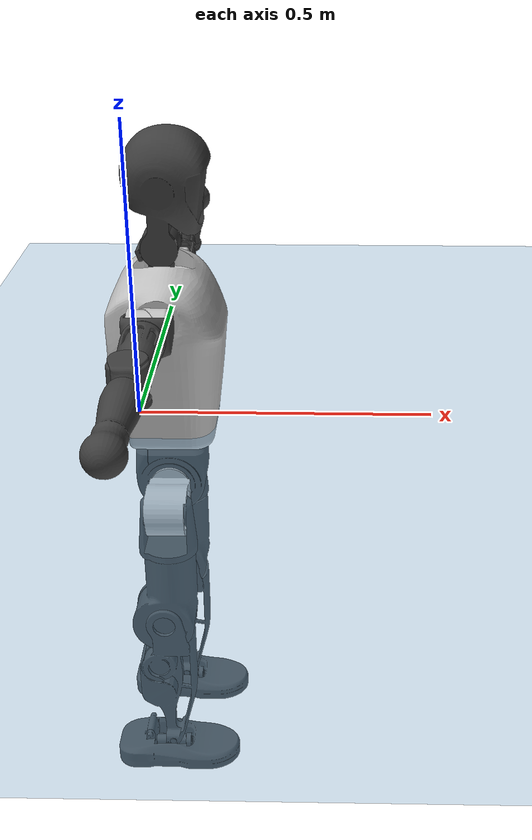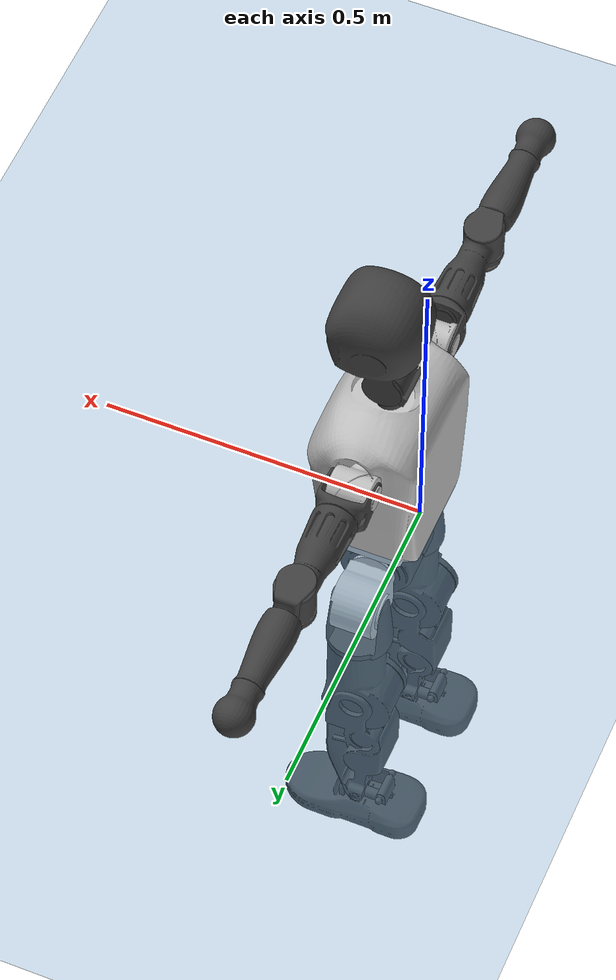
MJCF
<mujoco model="T1">
  <compiler angle="radian" assetdir="assets" balanceinertia="true" inertiafromgeom="false"/>

  <option timestep="0.005" density="1.2" viscosity="2e-05"/>

  <size nkey="1"/>

  <visual>
    <quality shadowsize="8192"/>
    <map shadowclip="0.5"/>
  </visual>

  <default>
    <default class="/">
      <joint armature="0.01" damping="0.01" frictionloss="0.1"/>
      <geom contype="0" conaffinity="0" group="1" solref="-1000 -80"/>
      <site size="0.01 0.005 0.005" group="5"/>
      <general forcelimited="true" biastype="affine" gainprm="25" biasprm="0 -25 -0.6"/>
      <default class="t1">
        <geom rgba="0.25 0.25 0.25 1"/>
        <default class="visual">
          <geom type="mesh" group="2"/>
        </default>
        <default class="collision">
          <geom group="3"/>
        </default>
        <default class="foot">
          <geom size="0.1115 0.05 0.015" type="box" condim="6" group="4" priority="1" solimp="0.015 1 0.015"/>
        </default>
        <default class="reward_collision_sphere">
          <geom group="5" rgba="1 0 0 1"/>
        </default>
      </default>
    </default>
  </default>

  <asset>
    <texture type="skybox" colorspace="auto" name="//unnamed_texture_0" builtin="gradient" rgb1="0.95 0.95 0.95" rgb2="0.95 0.95 0.95" width="100" height="600"/>
    <texture type="2d" colorspace="auto" name="texplane" builtin="checker" rgb1="0.345 0.575 0.748" rgb2="0.345 0.575 0.748" markrgb="1 1 1" width="512" height="512"/>
    <material name="MatPlane" class="/" texture="texplane" texuniform="true" texrepeat="2 2" specular="0.9"/>
    <mesh name="Trunk" class="/" file="Trunk.stl"/>
    <mesh name="H1" class="/" file="H1.stl"/>
    <mesh name="H2" class="/" file="H2.stl"/>
    <mesh name="AL1" class="/" file="AL1.stl"/>
    <mesh name="AL2" class="/" file="AL2.stl"/>
    <mesh name="AL3" class="/" file="AL3.stl"/>
    <mesh name="left_hand_link" class="/" file="left_hand_link.stl"/>
    <mesh name="AR1" class="/" file="AR1.stl"/>
    <mesh name="AR2" class="/" file="AR2.stl"/>
    <mesh name="AR3" class="/" file="AR3.stl"/>
    <mesh name="right_hand_link" class="/" file="right_hand_link.stl"/>
    <mesh name="Waist" class="/" file="Waist.stl"/>
    <mesh name="Hip_Pitch_Left" class="/" file="Hip_Pitch_Left.stl"/>
    <mesh name="Hip_Roll_Left" class="/" file="Hip_Roll_Left.stl"/>
    <mesh name="Hip_Yaw_Left" class="/" file="Hip_Yaw_Left.stl"/>
    <mesh name="Shank_Left" class="/" file="Shank_Left.stl"/>
    <mesh name="Ankle_Cross_Left" class="/" file="Ankle_Cross_Left.stl"/>
    <mesh name="left_foot_link" class="/" file="left_foot_link.stl"/>
    <mesh name="Hip_Pitch_Right" class="/" file="Hip_Pitch_Right.stl"/>
    <mesh name="Hip_Roll_Right" class="/" file="Hip_Roll_Right.stl"/>
    <mesh name="Hip_Yaw_Right" class="/" file="Hip_Yaw_Right.stl"/>
    <mesh name="Shank_Right" class="/" file="Shank_Right.stl"/>
    <mesh name="Ankle_Cross_Right" class="/" file="Ankle_Cross_Right.stl"/>
    <mesh name="right_foot_link" class="/" file="right_foot_link.stl"/>
  </asset>

  <worldbody>
    <geom name="floor" class="/" size="100 100 0.125" type="plane" group="0" material="MatPlane"/>
    <light name="toplight_shadow" class="/" pos="0 0 5" dir="0.0990148 0.0990148 -0.990148" type="directional" ambient="0.04 0.04 0.04" diffuse="0.55 0.55 0.55" specular="0.12 0.12 0.12"/>
    <light name="toplight_fill" class="/" pos="0 0 5" dir="0.0990148 0.0990148 -0.990148" type="directional" castshadow="false" ambient="0.04 0.04 0.04" diffuse="0.3 0.3 0.3" specular="0.08 0.08 0.08"/>
    <body name="trunk" childclass="t1" pos="0.000191413 -0.000432128 -3.56897e-05" quat="1 0.00012365 -0.000207048 -0.000436847">
      <inertial pos="0.0460399 -0.00142355 0.10258" quat="0.999965 0.000384923 -0.00831507 0.000740092" mass="9.35046" diaginertia="0.0376577 0.0593469 0.0513207"/>
      <joint name="//unnamed_joint_0" type="free" armature="0" damping="0" frictionloss="0"/>
      <geom name="//unnamed_geom_1" class="visual" rgba="0.76 0.76 0.76 1" mesh="Trunk"/>
      <geom name="//unnamed_geom_2" class="collision" size="0.069212 0.0922827 0.138424" pos="0.0501565 0 0.118134" type="box"/>
      <geom name="//unnamed_geom_3" class="reward_collision_sphere" size="0.106125" pos="0.0501565 0 0.0984448"/>
      <geom name="//unnamed_geom_4" class="reward_collision_sphere" size="0.0138424" pos="0.0501565 0.0805877 0"/>
      <geom name="//unnamed_geom_5" class="reward_collision_sphere" size="0.0138424" pos="0.0501565 -0.0805877 0"/>
      <geom name="//unnamed_geom_6" class="reward_collision_sphere" size="0.0138424" pos="0.0501565 0.101446 0.177201"/>
      <geom name="//unnamed_geom_7" class="reward_collision_sphere" size="0.0138424" pos="0.0501565 -0.101446 0.177201"/>
      <site name="imu" pos="-0.0090833 0.00971015 -0.00869255" size="0.00922827"/>
      <camera name="track" pos="0 -1.89618 0" quat="0.707107 0.707107 0 0" mode="trackcom"/>
      <camera name="ego_camera" pos="0.101985 0 0.413468" quat="-0.5 -0.5 0.5 0.5"/>
      <body name="H1" pos="0.0515181 3.22879e-05 0.239828" quat="1 0.000272988 0.000781086 -0.000300887">
        <inertial pos="-0.0012028 -0.00103331 0.0556043" quat="0.763659 -0.0119452 0.00078967 0.645509" mass="0.36358" diaginertia="9.93786e-05 0.000172094 0.000140391"/>
        <joint name="AAHead_yaw" pos="0 0 0" axis="0.000842646 -0.00222007 0.999997" stiffness="0.000970329" range="-1.56724 1.57641" armature="0.0101406" damping="0.00160845" frictionloss="0.0912375"/>
        <geom name="//unnamed_geom_8" class="visual" mesh="H1"/>
        <body name="H2" pos="0.00162551 9.47289e-05 0.0608368" quat="1 -0.000136122 0.000122301 0.000391053">
          <inertial pos="0.0061156 0.00141219 0.0968508" quat="0.98839 0.106828 -0.0746339 -0.0781183" mass="0.500054" diaginertia="0.000829977 0.00147571 0.00158402"/>
          <joint name="Head_pitch" pos="0 0 0" axis="-0.000934584 -0.999999 -0.00121358" range="-1.22353 0.358745" armature="0.00864532" damping="0.00724246" frictionloss="0.0899791"/>
          <geom name="//unnamed_geom_9" class="visual" mesh="H2"/>
          <geom name="//unnamed_geom_10" class="collision" size="0.0738261" pos="0.00835941 0 0.108289"/>
          <geom name="//unnamed_geom_11" class="reward_collision_sphere" size="0.0830544" pos="0.0167188 0 0.0984448"/>
        </body>
      </body>
      <body name="AL1" pos="0.0478872 0.100479 0.214725" quat="1 -0.000248685 0.000211073 -5.46979e-06">
        <inertial pos="-0.00101847 0.0432731 -7.82058e-05" quat="0.50363 0.496019 -0.505197 0.495073" mass="0.41815" diaginertia="0.000554984 0.00100233 0.000273868"/>
        <joint name="Left_Shoulder_Pitch" pos="0 0 0" axis="-0.000502283 0.999991 -0.00417498" range="-3.32894 1.20945" armature="0.00962289" damping="0.00898348" frictionloss="0.0934876"/>
        <geom name="//unnamed_geom_12" class="visual" rgba="0.76 0.76 0.76 1" mesh="AL1"/>
        <body name="AL2" pos="0.00140366 0.0441595 8.46738e-05" quat="1 1.29553e-05 -3.06171e-05 1.12663e-05">
          <inertial pos="0.00362879 0.0362941 0.00101541" quat="0.487641 0.512205 -0.487986 0.511588" mass="0.127773" diaginertia="0.000163394 0.000259657 0.000161758"/>
          <joint name="Left_Shoulder_Roll" pos="0 0 0" axis="-0.999996 -0.00207017 0.00170076" range="-1.53768 1.77503" armature="0.0084688" damping="0.00589207" frictionloss="0.0918472"/>
          <geom name="//unnamed_geom_13" class="visual" mesh="AL2"/>
          <body name="AL3" pos="0.00124891 0.0571605 -0.00068569" quat="1 6.74824e-05 -0.000151002 6.67644e-06">
            <inertial pos="-0.000344421 0.0808507 -0.000152671" quat="0.708492 0.705713 -0.00141809 0.00272579" mass="0.806539" diaginertia="0.00530009 0.00989458 0.000565834"/>
            <joint name="Left_Elbow_Pitch" pos="0 0 0" axis="-0.00908373 -0.999945 0.00517377" range="-2.23618 2.28371" armature="0.00820954" damping="0.00215762" frictionloss="0.0912425"/>
            <geom name="//unnamed_geom_14" class="visual" mesh="AL3"/>
            <geom name="//unnamed_geom_15" class="collision" size="0.0276848 0.069212" pos="0 0.0474045 0" quat="0.707105 0.707108 0 0" type="cylinder"/>
            <geom name="//unnamed_geom_16" class="reward_collision_sphere" size="0.0332218"/>
            <body name="left_hand_link" pos="0.000337799 0.140244 0.000904893" quat="1 0.000291725 0.000279804 -0.000299709">
              <inertial pos="-0.000389025 0.104141 -0.000346324" quat="0.707846 0.706366 -1.17459e-05 -0.000221715" mass="0.25466" diaginertia="0.00335366 0.00630434 0.000195643"/>
              <joint name="Left_Elbow_Yaw" pos="0 0 0" axis="-0.00506394 -0.00133313 0.999986" range="-2.42538 0.00665977" armature="0.0100968" damping="0.0149025" frictionloss="0.0946318"/>
              <geom name="//unnamed_geom_17" class="visual" mesh="left_hand_link"/>
              <geom name="//unnamed_geom_18" class="collision" size="0.0276848 0.0807473" pos="0 0.123252 0" quat="0.707105 0.707108 0 0" type="cylinder"/>
              <geom name="//unnamed_geom_19" class="reward_collision_sphere" size="0.0461413"/>
              <geom name="//unnamed_geom_20" class="reward_collision_sphere" size="0.0322989" pos="0 0.10429 0"/>
              <geom name="//unnamed_geom_21" class="reward_collision_sphere" size="0.0322989" pos="0 0.20384 0"/>
            </body>
          </body>
        </body>
      </body>
      <body name="AR1" pos="0.0465993 -0.100281 0.215277" quat="1 0.000350864 0.00027491 5.74284e-05">
        <inertial pos="-0.00271111 -0.0437663 0.000140126" quat="0.496605 0.497828 -0.502759 0.502777" mass="0.412267" diaginertia="0.000563594 0.00100022 0.000276732"/>
        <joint name="Right_Shoulder_Pitch" pos="0 0 0" axis="-0.0012423 -0.999994 0.00326856" stiffness="0.00324513" range="-1.22841 3.31189" armature="0.00913703" damping="0.00566503" frictionloss="0.0914248"/>
        <geom name="//unnamed_geom_22" class="visual" rgba="0.76 0.76 0.76 1" mesh="AR1"/>
        <body name="AR2" pos="-5.50951e-05 -0.0428202 -0.000121433" quat="1 0.000447039 0.000261597 0.000181563">
          <inertial pos="0.00208616 -0.0355199 -0.000206615" quat="0.511567 0.488056 -0.511844 0.487971" mass="0.124943" diaginertia="0.000164463 0.000268934 0.00016196"/>
          <joint name="Right_Shoulder_Roll" pos="0 0 0" axis="-0.999987 0.00352215 -0.00376698" stiffness="0.00135526" range="-1.75316 1.61074" armature="0.009017" damping="0.0070571" frictionloss="0.0936126"/>
          <geom name="//unnamed_geom_23" class="visual" mesh="AR2"/>
          <body name="AR3" pos="-0.000858916 -0.0575345 -0.000455597" quat="1 1.02563e-05 1.09663e-05 -2.7416e-05">
            <inertial pos="-0.000542168 -0.0827421 0.000998547" quat="0.708746 0.705463 0.000641015 -0.000770785" mass="0.798144" diaginertia="0.00520274 0.00977058 0.000579311"/>
            <joint name="Right_Elbow_Pitch" pos="0 0 0" axis="0.00406428 0.999992 0.000488096" range="-2.27897 2.26114" armature="0.00933343" damping="0.0120879" frictionloss="0.0927437"/>
            <geom name="//unnamed_geom_24" class="visual" mesh="AR3"/>
            <geom name="//unnamed_geom_25" class="collision" size="0.0276848 0.069212" pos="0 -0.0474045 0" quat="0.707105 0.707108 0 0" type="cylinder"/>
            <geom name="//unnamed_geom_26" class="reward_collision_sphere" size="0.0332218"/>
            <body name="right_hand_link" pos="-0.000655483 -0.139156 -0.000295227" quat="1 0.000127244 -0.000122787 0.000308054">
              <inertial pos="-0.000494725 -0.103807 0.00045983" quat="0.70765 0.706561 -0.000437965 0.00187477" mass="0.26133" diaginertia="0.00332491 0.00625103 0.000199117"/>
              <joint name="Right_Elbow_Yaw" pos="0 0 0" axis="-0.00317571 -0.000257772 0.999995" range="0.006678 2.43186" armature="0.00936456" damping="0.0110161" frictionloss="0.0922356"/>
              <geom name="//unnamed_geom_27" class="visual" mesh="right_hand_link"/>
              <geom name="//unnamed_geom_28" class="collision" size="0.0276848 0.0807473" pos="0 -0.123252 0" quat="0.707105 0.707108 0 0" type="cylinder"/>
              <geom name="//unnamed_geom_29" class="reward_collision_sphere" size="0.0461413"/>
              <geom name="//unnamed_geom_30" class="reward_collision_sphere" size="0.0322989" pos="0 -0.10429 0"/>
              <geom name="//unnamed_geom_31" class="reward_collision_sphere" size="0.0322989" pos="0 -0.20384 0"/>
            </body>
          </body>
        </body>
      </body>
      <body name="Waist" pos="0.0536144 -0.00206601 -0.113896" quat="1 0.000288845 0.000226426 0.000130754">
        <inertial pos="-0.000581813 -0.000605657 0.00716365" quat="0.983241 -0.000934845 -0.182273 0.00351806" mass="2.07229" diaginertia="0.00215976 0.00413546 0.00438998"/>
        <joint name="Waist" pos="0 0 0" axis="-0.00573178 -0.00702075 0.999959" range="-1.59018 1.58742" armature="0.00962568" damping="0.0226731" frictionloss="0.0936839"/>
        <geom name="//unnamed_geom_32" class="visual" mesh="Waist"/>
        <body name="Hip_Pitch_Left" pos="-0.00111532 0.100879 -4.44119e-05" quat="0.999999 0.000930027 -0.000674651 -0.000781573">
          <inertial pos="0.000425692 -0.00541077 -0.0181921" quat="0.975159 0.221012 0.0146811 0.00164695" mass="0.773897" diaginertia="0.000720146 0.0010973 0.00115671"/>
          <joint name="Left_Hip_Pitch" pos="0 0 0" axis="0.00570008 0.999976 0.00401469" range="-1.78476 1.56998" armature="0.00893153" damping="0.00747264" frictionloss="0.101453"/>
          <geom name="//unnamed_geom_33" class="visual" rgba="0.76 0.76 0.76 1" mesh="Hip_Pitch_Left"/>
          <body name="Hip_Roll_Left" pos="0.00243123 0.00103187 -0.0222348" quat="1 0.000555375 0.000568286 -0.000418207">
            <inertial pos="0.00111183 0.00102012 -0.0546246" quat="0.708225 -0.0080044 -0.00517357 0.705923" mass="0.300712" diaginertia="0.000704931 0.00115901 0.000473802"/>
            <joint name="Left_Hip_Roll" pos="0 0 0" axis="-0.999999 0.00160032 0.000119247" stiffness="0.000797377" range="-1.57092 0.19792" armature="0.00928764" damping="0.0146624" frictionloss="0.0928382"/>
            <geom name="//unnamed_geom_34" class="visual" mesh="Hip_Roll_Left"/>
            <geom name="//unnamed_geom_35" class="reward_collision_sphere" size="0.0507555"/>
            <body name="Hip_Yaw_Left" pos="0.00173958 -0.00119853 -0.0815431" quat="1 5.75605e-05 0.000211114 5.26366e-05">
              <inertial pos="-0.00566884 0.00170746 -0.0862665" quat="0.695119 -0.0315682 -0.0330005 0.717443" mass="1.68165" diaginertia="0.0104008 0.0191893 0.00238387"/>
              <joint name="Left_Hip_Yaw" pos="0 0 0" axis="-0.00539264 0.00136456 -0.999985" range="-1.01317 1.00992" armature="0.00924502" damping="0.0135802" frictionloss="0.0918645"/>
              <geom name="//unnamed_geom_36" class="visual" mesh="Hip_Yaw_Left"/>
              <geom name="//unnamed_geom_37" class="collision" size="0.0461413 0.0738261" type="cylinder"/>
              <body name="Shank_Left" pos="-0.00931699 1.72632e-05 -0.131861" quat="1 -0.000118743 -0.000192694 0.000149405">
                <inertial pos="-0.00520968 0.00105978 -0.123493" quat="0.99722 0.000962857 -0.0310671 0.0677179" mass="1.36519" diaginertia="0.0141918 0.0263422 0.00172665"/>
                <joint name="Left_Knee_Pitch" pos="0 0 0" axis="-0.000392675 1 0.000177674" stiffness="0.000202403" range="0.005576 2.31675" armature="0.00946274" damping="0.010147" frictionloss="0.091919"/>
                <geom name="//unnamed_geom_38" class="visual" mesh="Shank_Left"/>
                <geom name="//unnamed_geom_39" class="collision" size="0.0461413 0.069212" pos="0 0 -0.118134" type="cylinder"/>
                <geom name="//unnamed_geom_40" class="reward_collision_sphere" size="0.0599837"/>
                <body name="Ankle_Cross_Left" pos="-0.000900074 -0.000682024 -0.276046" quat="1 0.000404085 2.32655e-05 -4.85171e-05">
                  <inertial pos="-0.00347373 0.000333891 -0.00877509" quat="0.44308 0.55109 0.552594 0.441158" mass="0.0572508" diaginertia="1.18564e-05 1.95285e-05 1.04184e-05"/>
                  <joint name="Left_Ankle_Pitch" pos="0 0 0" axis="0.00272221 0.999996 0.000858914" range="-0.909282 0.386262" armature="0.00903149" damping="0" frictionloss="0.0904499"/>
                  <geom name="//unnamed_geom_41" class="visual" mesh="Ankle_Cross_Left"/>
                  <body name="left_foot_link" pos="-0.000352381 0.000803649 -0.0135237" quat="0.999999 0.000343525 0.000121066 -0.000961958">
                    <inertial pos="0.000658675 -0.000492177 -0.00841953" quat="0.000117329 0.618038 0.000304975 0.786148" mass="0.554178" diaginertia="0.00114686 0.00187788 0.0021385"/>
                    <joint name="Left_Ankle_Roll" pos="0 0 0" axis="-1 0.000179154 -0.00097377" range="-0.446686 0.480843" armature="0.00926757" damping="0.0101029" frictionloss="0.103028"/>
                    <geom name="//unnamed_geom_42" class="visual" mesh="left_foot_link"/>
                    <geom name="left_foot" class="foot" size="0.105245 0.0438442 0.0152347" pos="0.00835941 0 -0.0147667"/>
                    <geom name="//unnamed_geom_44" class="reward_collision_sphere" size="0.047987" pos="0.00835941 0 -0.0147667"/>
                    <geom name="//unnamed_geom_45" class="reward_collision_sphere" size="0.0276848" pos="0.0794144 -0.0218061 -0.0147667"/>
                    <geom name="//unnamed_geom_46" class="reward_collision_sphere" size="0.0276848" pos="-0.0585159 -0.0218061 -0.0147667"/>
                    <site name="left_foot" class="foot" pos="0.00835941 0 -0.0147667" size="0.00922827"/>
                  </body>
                </body>
              </body>
            </body>
          </body>
        </body>
        <body name="Hip_Pitch_Right" pos="-4.94282e-05 -0.100674 -7.18154e-05" quat="1 -8.93708e-05 -9.46162e-06 1.28558e-05">
          <inertial pos="0.0014861 0.00717444 -0.0167508" quat="0.971465 -0.236861 0.0123322 0.00052072" mass="0.790794" diaginertia="0.000716739 0.0010806 0.00113782"/>
          <joint name="Right_Hip_Pitch" pos="0 0 0" axis="1.20374e-05 -1 -0.000967687" stiffness="0.00236518" range="-1.56587 1.8099" armature="0.00888684" damping="0.00705104" frictionloss="0.0914514"/>
          <geom name="//unnamed_geom_47" class="visual" rgba="0.76 0.76 0.76 1" mesh="Hip_Pitch_Right"/>
          <body name="Hip_Roll_Right" pos="0.000289654 -6.67415e-05 -0.0212476" quat="1 8.74329e-05 0.000163428 -1.35119e-05">
            <inertial pos="0.000791395 -0.000804047 -0.0526757" quat="0.70748 -0.00606014 -0.00374457 0.706698" mass="0.298201" diaginertia="0.000707991 0.00115956 0.000465737"/>
            <joint name="Right_Hip_Roll" pos="0 0 0" axis="-0.999996 0.000433381 0.00277867" range="-0.202869 1.56495" armature="0.00950102" damping="0.00656243" frictionloss="0.0921333"/>
            <geom name="//unnamed_geom_48" class="visual" mesh="Hip_Roll_Right"/>
            <geom name="//unnamed_geom_49" class="reward_collision_sphere" size="0.0507555"/>
            <body name="Hip_Yaw_Right" pos="-0.000903876 0.00193883 -0.0811319" quat="1 9.47762e-06 -1.69756e-05 2.86139e-05">
              <inertial pos="-0.00605575 3.90938e-05 -0.0900502" quat="0.716597 -0.0332392 -0.0359243 0.695768" mass="1.72714" diaginertia="0.0104954 0.0195105 0.0024114"/>
              <joint name="Right_Hip_Yaw" pos="0 0 0" axis="0.00174695 1.98751e-05 -0.999998" range="-0.978907 1.01232" armature="0.00943614" damping="0.0130516" frictionloss="0.093005"/>
              <geom name="//unnamed_geom_50" class="visual" mesh="Hip_Yaw_Right"/>
              <geom name="//unnamed_geom_51" class="collision" size="0.0461413 0.0738261" type="cylinder"/>
              <body name="Shank_Right" pos="-0.0121231 6.76957e-05 -0.131892" quat="1 -2.07344e-05 -2.41097e-05 0.000229601">
                <inertial pos="-0.00283798 -0.000867415 -0.119781" quat="0.999099 0.00220593 -0.0243471 -0.0346898" mass="1.38606" diaginertia="0.0141823 0.0268596 0.00179745"/>
                <joint name="Right_Knee_Pitch" pos="0 0 0" axis="0.00626202 -0.999976 -0.00288635" stiffness="0.000486868" range="-2.33761 0.00156219" armature="0.00911911" damping="0.0018057" frictionloss="0.0954191"/>
                <geom name="//unnamed_geom_52" class="visual" mesh="Shank_Right"/>
                <geom name="//unnamed_geom_53" class="collision" size="0.0461413 0.069212" pos="0 0 -0.118134" type="cylinder"/>
                <geom name="//unnamed_geom_54" class="reward_collision_sphere" size="0.0599837"/>
                <body name="Ankle_Cross_Right" pos="0.00147905 -0.00282453 -0.27627" quat="1 0.000660641 -0.000300139 -0.000652344">
                  <inertial pos="-0.0027806 0.000554079 -0.00823105" quat="0.44313 0.551968 0.550161 0.443046" mass="0.0575111" diaginertia="1.16613e-05 1.96779e-05 1.06557e-05"/>
                  <joint name="Right_Ankle_Pitch" pos="0 0 0" axis="0.00482739 -0.999985 0.00266018" range="-0.333746 0.909207" armature="0.00903191" damping="0.0111413" frictionloss="0.0920906"/>
                  <geom name="//unnamed_geom_55" class="visual" mesh="Ankle_Cross_Right"/>
                  <body name="right_foot_link" pos="3.57608e-05 -0.000938358 -0.0115937" quat="1 -0.000168286 -0.000270767 0.000241536">
                    <inertial pos="-0.000632438 -0.000331374 -0.00883756" quat="-0.00284049 0.619419 -0.00284931 0.78505" mass="0.538718" diaginertia="0.00107705 0.00182847 0.00204969"/>
                    <joint name="Right_Ankle_Roll" pos="0 0 0" axis="-0.999995 -0.00323319 0.000642409" range="-0.449452 0.455678" armature="0.00882919" damping="0.00856837" frictionloss="0.0905184"/>
                    <geom name="//unnamed_geom_56" class="visual" mesh="right_foot_link"/>
                    <geom name="right_foot" class="foot" size="0.101443 0.0441851 0.0138696" pos="0.00835941 0 -0.0147667"/>
                    <geom name="//unnamed_geom_58" class="reward_collision_sphere" size="0.0369131"/>
                    <geom name="//unnamed_geom_59" class="reward_collision_sphere" size="0.0276848" pos="0.00835941 0 -0.0147667"/>
                    <geom name="//unnamed_geom_60" class="reward_collision_sphere" size="0.0276848" pos="0.0794144 0.0218061 -0.0147667"/>
                    <geom name="//unnamed_geom_61" class="reward_collision_sphere" size="0.0276848" pos="-0.0585159 0.0218061 -0.0147667"/>
                    <site name="right_foot" class="foot" pos="0.00835941 0 -0.0147667" size="0.00922827"/>
                  </body>
                </body>
              </body>
            </body>
          </body>
        </body>
      </body>
    </body>
  </worldbody>

  <contact>
    <pair class="/" geom1="floor" geom2="left_foot" name="//unnamed_contact_0"/>
    <pair class="/" geom1="floor" geom2="right_foot" name="//unnamed_contact_1"/>
  </contact>

  <actuator>
    <general name="AAHead_yaw" class="/" joint="AAHead_yaw" forcerange="-6.6703 6.6703" gainprm="21.9018" biasprm="0 -21.9018 -0.556663"/>
    <general name="Head_pitch" class="/" joint="Head_pitch" forcerange="-6.33451 6.33451" gainprm="21.9018" biasprm="0 -21.9018 -0.556663"/>
    <general name="Left_Shoulder_Pitch" class="/" joint="Left_Shoulder_Pitch" forcerange="-16.834 16.834" gainprm="21.9018" biasprm="0 -21.9018 -0.556663"/>
    <general name="Left_Shoulder_Roll" class="/" joint="Left_Shoulder_Roll" forcerange="-16.9278 16.9278" gainprm="21.9018" biasprm="0 -21.9018 -0.556663"/>
    <general name="Left_Elbow_Pitch" class="/" joint="Left_Elbow_Pitch" forcerange="-15.4224 15.4224" gainprm="21.9018" biasprm="0 -21.9018 -0.556663"/>
    <general name="Left_Elbow_Yaw" class="/" joint="Left_Elbow_Yaw" forcerange="-17.6353 17.6353" gainprm="21.9018" biasprm="0 -21.9018 -0.556663"/>
    <general name="Right_Shoulder_Pitch" class="/" joint="Right_Shoulder_Pitch" forcerange="-17.7615 17.7615" gainprm="21.9018" biasprm="0 -21.9018 -0.556663"/>
    <general name="Right_Shoulder_Roll" class="/" joint="Right_Shoulder_Roll" forcerange="-17.2514 17.2514" gainprm="21.9018" biasprm="0 -21.9018 -0.556663"/>
    <general name="Right_Elbow_Pitch" class="/" joint="Right_Elbow_Pitch" forcerange="-16.6459 16.6459" gainprm="21.9018" biasprm="0 -21.9018 -0.556663"/>
    <general name="Right_Elbow_Yaw" class="/" joint="Right_Elbow_Yaw" forcerange="-16.6694 16.6694" gainprm="21.9018" biasprm="0 -21.9018 -0.556663"/>
    <general name="Waist" class="/" joint="Waist" forcerange="-27.687 27.687" gainprm="21.9018" biasprm="0 -21.9018 -0.556663"/>
    <general name="Left_Hip_Pitch" class="/" joint="Left_Hip_Pitch" forcerange="-43.0291 43.0291" gainprm="21.9018" biasprm="0 -21.9018 -0.556663"/>
    <general name="Left_Hip_Roll" class="/" joint="Left_Hip_Roll" forcerange="-29.3792 29.3792" gainprm="21.9018" biasprm="0 -21.9018 -0.556663"/>
    <general name="Left_Hip_Yaw" class="/" joint="Left_Hip_Yaw" forcerange="-25.6385 25.6385" gainprm="21.9018" biasprm="0 -21.9018 -0.556663"/>
    <general name="Left_Knee_Pitch" class="/" joint="Left_Knee_Pitch" forcerange="-50.8567 50.8567" gainprm="21.9018" biasprm="0 -21.9018 -0.556663"/>
    <general name="Left_Ankle_Pitch" class="/" joint="Left_Ankle_Pitch" forcerange="-18.2766 18.2766" gainprm="21.9018" biasprm="0 -21.9018 -0.556663"/>
    <general name="Left_Ankle_Roll" class="/" joint="Left_Ankle_Roll" forcerange="-13.8867 13.8867" gainprm="21.9018" biasprm="0 -21.9018 -0.556663"/>
    <general name="Right_Hip_Pitch" class="/" joint="Right_Hip_Pitch" forcerange="-40.1791 40.1791" gainprm="21.9018" biasprm="0 -21.9018 -0.556663"/>
    <general name="Right_Hip_Roll" class="/" joint="Right_Hip_Roll" forcerange="-27.784 27.784" gainprm="21.9018" biasprm="0 -21.9018 -0.556663"/>
    <general name="Right_Hip_Yaw" class="/" joint="Right_Hip_Yaw" forcerange="-26.986 26.986" gainprm="21.9018" biasprm="0 -21.9018 -0.556663"/>
    <general name="Right_Knee_Pitch" class="/" joint="Right_Knee_Pitch" forcerange="-55.146 55.146" gainprm="21.9018" biasprm="0 -21.9018 -0.556663"/>
    <general name="Right_Ankle_Pitch" class="/" joint="Right_Ankle_Pitch" forcerange="-17.6443 17.6443" gainprm="21.9018" biasprm="0 -21.9018 -0.556663"/>
    <general name="Right_Ankle_Roll" class="/" joint="Right_Ankle_Roll" forcerange="-13.8631 13.8631" gainprm="21.9018" biasprm="0 -21.9018 -0.556663"/>
  </actuator>

  <sensor>
    <gyro site="imu" name="imu_angular_velocity"/>
    <velocimeter site="imu" name="imu_linear_velocity"/>
    <framelinvel objtype="site" objname="left_foot" name="left_foot_global_linear_velocity"/>
    <framelinvel objtype="site" objname="right_foot" name="right_foot_global_linear_velocity"/>
  </sensor>

  <keyframe>
    <key name="home" qpos="0 0 0.6385 1 0 0 0 0 0 0 1.4 0 -0.4 0 -1.4 0 0.4 0 -0.4 0 0 0.8 -0.4 0 0.4 0 0 -0.8 0.4 0"/>
  </keyframe>
</mujoco>
